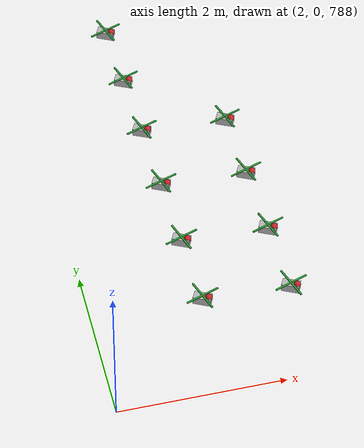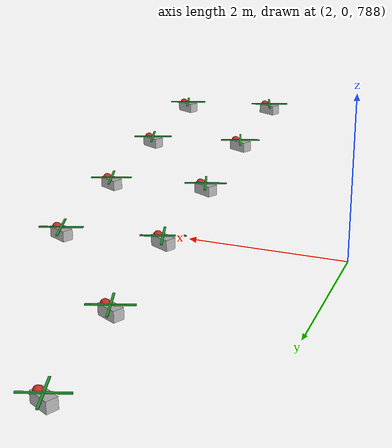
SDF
<sdf version="1.5">
 <world name="default">
  <model name="rotor_3">
   <pose>3 0 789.749 0 0 -0.452</pose>
   <link name="link">
    <sensor name="gps" type="gps">
     <gps>
      <position_sensing>
       <horizontal>
        <noise type="gaussian_quantized">
         <mean>0</mean>
         <stddev>4</stddev>
         <bias_mean>0</bias_mean>
         <bias_stddev>0</bias_stddev>
         <precision>0.001</precision>
        </noise>
       </horizontal>
       <vertical>
        <noise type="gaussian_quantized">
         <mean>0</mean>
         <stddev>8</stddev>
         <bias_mean>0</bias_mean>
         <bias_stddev>0</bias_stddev>
         <precision>0.01</precision>
        </noise>
       </vertical>
      </position_sensing>
      <velocity_sensing>
       <horizontal>
        <noise type="gaussian_quantized">
         <mean>0</mean>
         <stddev>4</stddev>
         <bias_mean>0</bias_mean>
         <bias_stddev>0</bias_stddev>
         <precision>0.001</precision>
        </noise>
       </horizontal>
       <vertical>
        <noise type="gaussian_quantized">
         <mean>0</mean>
         <stddev>8</stddev>
         <bias_mean>0</bias_mean>
         <bias_stddev>0</bias_stddev>
         <precision>0.01</precision>
        </noise>
       </vertical>
      </velocity_sensing>
     </gps>
     <always_on>1</always_on>
    </sensor>
    <sensor name="imu" type="imu">
     <imu>
      <angular_velocity>
       <x>
        <noise type="gaussian">
         <mean>0</mean>
         <stddev>0.0002</stddev>
         <bias_mean>7.5e-06</bias_mean>
         <bias_stddev>8e-07</bias_stddev>
        </noise>
       </x>
       <y>
        <noise type="gaussian">
         <mean>0</mean>
         <stddev>0.0002</stddev>
         <bias_mean>7.5e-06</bias_mean>
         <bias_stddev>8e-07</bias_stddev>
        </noise>
       </y>
       <z>
        <noise type="gaussian">
         <mean>0</mean>
         <stddev>0.0002</stddev>
         <bias_mean>7.5e-06</bias_mean>
         <bias_stddev>8e-07</bias_stddev>
        </noise>
       </z>
      </angular_velocity>
      <linear_acceleration>
       <x>
        <noise type="gaussian">
         <mean>0</mean>
         <stddev>0.0002</stddev>
         <bias_mean>7.5e-06</bias_mean>
         <bias_stddev>8e-07</bias_stddev>
        </noise>
       </x>
       <y>
        <noise type="gaussian">
         <mean>0</mean>
         <stddev>0.0002</stddev>
         <bias_mean>7.5e-06</bias_mean>
         <bias_stddev>8e-07</bias_stddev>
        </noise>
       </y>
       <z>
        <noise type="gaussian">
         <mean>0</mean>
         <stddev>0.0002</stddev>
         <bias_mean>7.5e-06</bias_mean>
         <bias_stddev>8e-07</bias_stddev>
        </noise>
       </z>
      </linear_acceleration>
     </imu>
     <always_on>1</always_on>
    </sensor>
    <sensor name="camera" type="logical_camera">
     <logical_camera>
      <near>0.1</near>
      <far>50</far>
      <horizontal_fov>1.4656</horizontal_fov>
      <aspect_ratio>1.778</aspect_ratio>
     </logical_camera>
     <visualize>0</visualize>
     <always_on>1</always_on>
    </sensor>
    <kinematic>1</kinematic>
    <gravity>0</gravity>
    <collision name="collision"><geometry><box><size>0.2 0.1 0.1</size></box></geometry></collision>
    <visual name="visual"><geometry><box><size>0.2 0.1 0.1</size></box></geometry></visual>
    <visual name="visual_front">
     <pose>0.07 0 0.04 0 -0 0</pose>
     <geometry><sphere><radius>0.04</radius></sphere></geometry>
     <material><script><name>Gazebo/Red</name><uri>__default__</uri></script></material>
    </visual>
    <visual name="visual_blade1">
     <pose>0 0 0.055 0 -0 0.78539</pose>
     <geometry><box><size>0.4 0.02 0.01</size></box></geometry>
     <material><script><name>Gazebo/Green</name><uri>__default__</uri></script></material>
    </visual>
    <visual name="visual_blade2">
     <pose>0 0 0.055 0 -0 2.3562</pose>
     <geometry><box><size>0.4 0.02 0.01</size></box></geometry>
     <material><script><name>Gazebo/Green</name><uri>__default__</uri></script></material>
    </visual>
    <inertial>
     <inertia><ixx>1</ixx><ixy>0</ixy><ixz>0</ixz><iyy>1</iyy><iyz>0</iyz><izz>1</izz></inertia>
     <mass>1</mass>
    </inertial>
   </link>
   <plugin name="swarm_controller_rotor_3" filename="libTeamControllerPlugin.so">
    <type>rotor</type>
    <camera>link::camera</camera>
    <gps>link::gps</gps>
    <imu>link::imu</imu>
    <address>192.168.1.4</address>
    <num_messages>1</num_messages>
    <swarm_search_area>
     <min_relative_latitude_deg>-0.01</min_relative_latitude_deg>
     <max_relative_latitude_deg>0.01</max_relative_latitude_deg>
     <min_relative_longitude_deg>-0.01</min_relative_longitude_deg>
     <max_relative_longitude_deg>0.01</max_relative_longitude_deg>
    </swarm_search_area>
    <battery>
     <capacity>3500</capacity>
     <consumption>1500</consumption>
     <consumption_factor>0.8</consumption_factor>
    </battery>
   </plugin>
  </model>
  <model name="rotor_4">
   <pose>4 0 789.686 0 0 -0.452</pose>
   <link name="link">
    <sensor name="gps" type="gps">
     <gps>
      <position_sensing>
       <horizontal>
        <noise type="gaussian_quantized">
         <mean>0</mean>
         <stddev>4</stddev>
         <bias_mean>0</bias_mean>
         <bias_stddev>0</bias_stddev>
         <precision>0.001</precision>
        </noise>
       </horizontal>
       <vertical>
        <noise type="gaussian_quantized">
         <mean>0</mean>
         <stddev>8</stddev>
         <bias_mean>0</bias_mean>
         <bias_stddev>0</bias_stddev>
         <precision>0.01</precision>
        </noise>
       </vertical>
      </position_sensing>
      <velocity_sensing>
       <horizontal>
        <noise type="gaussian_quantized">
         <mean>0</mean>
         <stddev>4</stddev>
         <bias_mean>0</bias_mean>
         <bias_stddev>0</bias_stddev>
         <precision>0.001</precision>
        </noise>
       </horizontal>
       <vertical>
        <noise type="gaussian_quantized">
         <mean>0</mean>
         <stddev>8</stddev>
         <bias_mean>0</bias_mean>
         <bias_stddev>0</bias_stddev>
         <precision>0.01</precision>
        </noise>
       </vertical>
      </velocity_sensing>
     </gps>
     <always_on>1</always_on>
    </sensor>
    <sensor name="imu" type="imu">
     <imu>
      <angular_velocity>
       <x>
        <noise type="gaussian">
         <mean>0</mean>
         <stddev>0.0002</stddev>
         <bias_mean>7.5e-06</bias_mean>
         <bias_stddev>8e-07</bias_stddev>
        </noise>
       </x>
       <y>
        <noise type="gaussian">
         <mean>0</mean>
         <stddev>0.0002</stddev>
         <bias_mean>7.5e-06</bias_mean>
         <bias_stddev>8e-07</bias_stddev>
        </noise>
       </y>
       <z>
        <noise type="gaussian">
         <mean>0</mean>
         <stddev>0.0002</stddev>
         <bias_mean>7.5e-06</bias_mean>
         <bias_stddev>8e-07</bias_stddev>
        </noise>
       </z>
      </angular_velocity>
      <linear_acceleration>
       <x>
        <noise type="gaussian">
         <mean>0</mean>
         <stddev>0.0002</stddev>
         <bias_mean>7.5e-06</bias_mean>
         <bias_stddev>8e-07</bias_stddev>
        </noise>
       </x>
       <y>
        <noise type="gaussian">
         <mean>0</mean>
         <stddev>0.0002</stddev>
         <bias_mean>7.5e-06</bias_mean>
         <bias_stddev>8e-07</bias_stddev>
        </noise>
       </y>
       <z>
        <noise type="gaussian">
         <mean>0</mean>
         <stddev>0.0002</stddev>
         <bias_mean>7.5e-06</bias_mean>
         <bias_stddev>8e-07</bias_stddev>
        </noise>
       </z>
      </linear_acceleration>
     </imu>
     <always_on>1</always_on>
    </sensor>
    <sensor name="camera" type="logical_camera">
     <logical_camera>
      <near>0.1</near>
      <far>50</far>
      <horizontal_fov>1.4656</horizontal_fov>
      <aspect_ratio>1.778</aspect_ratio>
     </logical_camera>
     <visualize>0</visualize>
     <always_on>1</always_on>
    </sensor>
    <kinematic>1</kinematic>
    <gravity>0</gravity>
    <collision name="collision"><geometry><box><size>0.2 0.1 0.1</size></box></geometry></collision>
    <visual name="visual"><geometry><box><size>0.2 0.1 0.1</size></box></geometry></visual>
    <visual name="visual_front">
     <pose>0.07 0 0.04 0 -0 0</pose>
     <geometry><sphere><radius>0.04</radius></sphere></geometry>
     <material><script><name>Gazebo/Red</name><uri>__default__</uri></script></material>
    </visual>
    <visual name="visual_blade1">
     <pose>0 0 0.055 0 -0 0.78539</pose>
     <geometry><box><size>0.4 0.02 0.01</size></box></geometry>
     <material><script><name>Gazebo/Green</name><uri>__default__</uri></script></material>
    </visual>
    <visual name="visual_blade2">
     <pose>0 0 0.055 0 -0 2.3562</pose>
     <geometry><box><size>0.4 0.02 0.01</size></box></geometry>
     <material><script><name>Gazebo/Green</name><uri>__default__</uri></script></material>
    </visual>
    <inertial>
     <inertia><ixx>1</ixx><ixy>0</ixy><ixz>0</ixz><iyy>1</iyy><iyz>0</iyz><izz>1</izz></inertia>
     <mass>1</mass>
    </inertial>
   </link>
   <plugin name="swarm_controller_rotor_4" filename="libTeamControllerPlugin.so">
    <type>rotor</type>
    <camera>link::camera</camera>
    <gps>link::gps</gps>
    <imu>link::imu</imu>
    <address>192.168.1.5</address>
    <num_messages>1</num_messages>
    <swarm_search_area>
     <min_relative_latitude_deg>-0.01</min_relative_latitude_deg>
     <max_relative_latitude_deg>0.01</max_relative_latitude_deg>
     <min_relative_longitude_deg>-0.01</min_relative_longitude_deg>
     <max_relative_longitude_deg>0.01</max_relative_longitude_deg>
    </swarm_search_area>
    <battery>
     <capacity>3500</capacity>
     <consumption>1500</consumption>
     <consumption_factor>0.8</consumption_factor>
    </battery>
   </plugin>
  </model>
  <model name="rotor_9">
   <pose>3 1 789.592 0 0 -0.452</pose>
   <link name="link">
    <sensor name="gps" type="gps">
     <gps>
      <position_sensing>
       <horizontal>
        <noise type="gaussian_quantized">
         <mean>0</mean>
         <stddev>4</stddev>
         <bias_mean>0</bias_mean>
         <bias_stddev>0</bias_stddev>
         <precision>0.001</precision>
        </noise>
       </horizontal>
       <vertical>
        <noise type="gaussian_quantized">
         <mean>0</mean>
         <stddev>8</stddev>
         <bias_mean>0</bias_mean>
         <bias_stddev>0</bias_stddev>
         <precision>0.01</precision>
        </noise>
       </vertical>
      </position_sensing>
      <velocity_sensing>
       <horizontal>
        <noise type="gaussian_quantized">
         <mean>0</mean>
         <stddev>4</stddev>
         <bias_mean>0</bias_mean>
         <bias_stddev>0</bias_stddev>
         <precision>0.001</precision>
        </noise>
       </horizontal>
       <vertical>
        <noise type="gaussian_quantized">
         <mean>0</mean>
         <stddev>8</stddev>
         <bias_mean>0</bias_mean>
         <bias_stddev>0</bias_stddev>
         <precision>0.01</precision>
        </noise>
       </vertical>
      </velocity_sensing>
     </gps>
     <always_on>1</always_on>
    </sensor>
    <sensor name="imu" type="imu">
     <imu>
      <angular_velocity>
       <x>
        <noise type="gaussian">
         <mean>0</mean>
         <stddev>0.0002</stddev>
         <bias_mean>7.5e-06</bias_mean>
         <bias_stddev>8e-07</bias_stddev>
        </noise>
       </x>
       <y>
        <noise type="gaussian">
         <mean>0</mean>
         <stddev>0.0002</stddev>
         <bias_mean>7.5e-06</bias_mean>
         <bias_stddev>8e-07</bias_stddev>
        </noise>
       </y>
       <z>
        <noise type="gaussian">
         <mean>0</mean>
         <stddev>0.0002</stddev>
         <bias_mean>7.5e-06</bias_mean>
         <bias_stddev>8e-07</bias_stddev>
        </noise>
       </z>
      </angular_velocity>
      <linear_acceleration>
       <x>
        <noise type="gaussian">
         <mean>0</mean>
         <stddev>0.0002</stddev>
         <bias_mean>7.5e-06</bias_mean>
         <bias_stddev>8e-07</bias_stddev>
        </noise>
       </x>
       <y>
        <noise type="gaussian">
         <mean>0</mean>
         <stddev>0.0002</stddev>
         <bias_mean>7.5e-06</bias_mean>
         <bias_stddev>8e-07</bias_stddev>
        </noise>
       </y>
       <z>
        <noise type="gaussian">
         <mean>0</mean>
         <stddev>0.0002</stddev>
         <bias_mean>7.5e-06</bias_mean>
         <bias_stddev>8e-07</bias_stddev>
        </noise>
       </z>
      </linear_acceleration>
     </imu>
     <always_on>1</always_on>
    </sensor>
    <sensor name="camera" type="logical_camera">
     <logical_camera>
      <near>0.1</near>
      <far>50</far>
      <horizontal_fov>1.4656</horizontal_fov>
      <aspect_ratio>1.778</aspect_ratio>
     </logical_camera>
     <visualize>0</visualize>
     <always_on>1</always_on>
    </sensor>
    <kinematic>1</kinematic>
    <gravity>0</gravity>
    <collision name="collision"><geometry><box><size>0.2 0.1 0.1</size></box></geometry></collision>
    <visual name="visual"><geometry><box><size>0.2 0.1 0.1</size></box></geometry></visual>
    <visual name="visual_front">
     <pose>0.07 0 0.04 0 -0 0</pose>
     <geometry><sphere><radius>0.04</radius></sphere></geometry>
     <material><script><name>Gazebo/Red</name><uri>__default__</uri></script></material>
    </visual>
    <visual name="visual_blade1">
     <pose>0 0 0.055 0 -0 0.78539</pose>
     <geometry><box><size>0.4 0.02 0.01</size></box></geometry>
     <material><script><name>Gazebo/Green</name><uri>__default__</uri></script></material>
    </visual>
    <visual name="visual_blade2">
     <pose>0 0 0.055 0 -0 2.3562</pose>
     <geometry><box><size>0.4 0.02 0.01</size></box></geometry>
     <material><script><name>Gazebo/Green</name><uri>__default__</uri></script></material>
    </visual>
    <inertial>
     <inertia><ixx>1</ixx><ixy>0</ixy><ixz>0</ixz><iyy>1</iyy><iyz>0</iyz><izz>1</izz></inertia>
     <mass>1</mass>
    </inertial>
   </link>
   <plugin name="swarm_controller_rotor_9" filename="libTeamControllerPlugin.so">
    <type>rotor</type>
    <camera>link::camera</camera>
    <gps>link::gps</gps>
    <imu>link::imu</imu>
    <address>192.168.1.10</address>
    <num_messages>1</num_messages>
    <swarm_search_area>
     <min_relative_latitude_deg>-0.01</min_relative_latitude_deg>
     <max_relative_latitude_deg>0.01</max_relative_latitude_deg>
     <min_relative_longitude_deg>-0.01</min_relative_longitude_deg>
     <max_relative_longitude_deg>0.01</max_relative_longitude_deg>
    </swarm_search_area>
    <battery>
     <capacity>3500</capacity>
     <consumption>1500</consumption>
     <consumption_factor>0.8</consumption_factor>
    </battery>
   </plugin>
  </model>
  <model name="rotor_10">
   <pose>4 1 789.53 0 0 -0.452</pose>
   <link name="link">
    <sensor name="gps" type="gps">
     <gps>
      <position_sensing>
       <horizontal>
        <noise type="gaussian_quantized">
         <mean>0</mean>
         <stddev>4</stddev>
         <bias_mean>0</bias_mean>
         <bias_stddev>0</bias_stddev>
         <precision>0.001</precision>
        </noise>
       </horizontal>
       <vertical>
        <noise type="gaussian_quantized">
         <mean>0</mean>
         <stddev>8</stddev>
         <bias_mean>0</bias_mean>
         <bias_stddev>0</bias_stddev>
         <precision>0.01</precision>
        </noise>
       </vertical>
      </position_sensing>
      <velocity_sensing>
       <horizontal>
        <noise type="gaussian_quantized">
         <mean>0</mean>
         <stddev>4</stddev>
         <bias_mean>0</bias_mean>
         <bias_stddev>0</bias_stddev>
         <precision>0.001</precision>
        </noise>
       </horizontal>
       <vertical>
        <noise type="gaussian_quantized">
         <mean>0</mean>
         <stddev>8</stddev>
         <bias_mean>0</bias_mean>
         <bias_stddev>0</bias_stddev>
         <precision>0.01</precision>
        </noise>
       </vertical>
      </velocity_sensing>
     </gps>
     <always_on>1</always_on>
    </sensor>
    <sensor name="imu" type="imu">
     <imu>
      <angular_velocity>
       <x>
        <noise type="gaussian">
         <mean>0</mean>
         <stddev>0.0002</stddev>
         <bias_mean>7.5e-06</bias_mean>
         <bias_stddev>8e-07</bias_stddev>
        </noise>
       </x>
       <y>
        <noise type="gaussian">
         <mean>0</mean>
         <stddev>0.0002</stddev>
         <bias_mean>7.5e-06</bias_mean>
         <bias_stddev>8e-07</bias_stddev>
        </noise>
       </y>
       <z>
        <noise type="gaussian">
         <mean>0</mean>
         <stddev>0.0002</stddev>
         <bias_mean>7.5e-06</bias_mean>
         <bias_stddev>8e-07</bias_stddev>
        </noise>
       </z>
      </angular_velocity>
      <linear_acceleration>
       <x>
        <noise type="gaussian">
         <mean>0</mean>
         <stddev>0.0002</stddev>
         <bias_mean>7.5e-06</bias_mean>
         <bias_stddev>8e-07</bias_stddev>
        </noise>
       </x>
       <y>
        <noise type="gaussian">
         <mean>0</mean>
         <stddev>0.0002</stddev>
         <bias_mean>7.5e-06</bias_mean>
         <bias_stddev>8e-07</bias_stddev>
        </noise>
       </y>
       <z>
        <noise type="gaussian">
         <mean>0</mean>
         <stddev>0.0002</stddev>
         <bias_mean>7.5e-06</bias_mean>
         <bias_stddev>8e-07</bias_stddev>
        </noise>
       </z>
      </linear_acceleration>
     </imu>
     <always_on>1</always_on>
    </sensor>
    <sensor name="camera" type="logical_camera">
     <logical_camera>
      <near>0.1</near>
      <far>50</far>
      <horizontal_fov>1.4656</horizontal_fov>
      <aspect_ratio>1.778</aspect_ratio>
     </logical_camera>
     <visualize>0</visualize>
     <always_on>1</always_on>
    </sensor>
    <kinematic>1</kinematic>
    <gravity>0</gravity>
    <collision name="collision"><geometry><box><size>0.2 0.1 0.1</size></box></geometry></collision>
    <visual name="visual"><geometry><box><size>0.2 0.1 0.1</size></box></geometry></visual>
    <visual name="visual_front">
     <pose>0.07 0 0.04 0 -0 0</pose>
     <geometry><sphere><radius>0.04</radius></sphere></geometry>
     <material><script><name>Gazebo/Red</name><uri>__default__</uri></script></material>
    </visual>
    <visual name="visual_blade1">
     <pose>0 0 0.055 0 -0 0.78539</pose>
     <geometry><box><size>0.4 0.02 0.01</size></box></geometry>
     <material><script><name>Gazebo/Green</name><uri>__default__</uri></script></material>
    </visual>
    <visual name="visual_blade2">
     <pose>0 0 0.055 0 -0 2.3562</pose>
     <geometry><box><size>0.4 0.02 0.01</size></box></geometry>
     <material><script><name>Gazebo/Green</name><uri>__default__</uri></script></material>
    </visual>
    <inertial>
     <inertia><ixx>1</ixx><ixy>0</ixy><ixz>0</ixz><iyy>1</iyy><iyz>0</iyz><izz>1</izz></inertia>
     <mass>1</mass>
    </inertial>
   </link>
   <plugin name="swarm_controller_rotor_10" filename="libTeamControllerPlugin.so">
    <type>rotor</type>
    <camera>link::camera</camera>
    <gps>link::gps</gps>
    <imu>link::imu</imu>
    <address>192.168.1.11</address>
    <num_messages>1</num_messages>
    <swarm_search_area>
     <min_relative_latitude_deg>-0.01</min_relative_latitude_deg>
     <max_relative_latitude_deg>0.01</max_relative_latitude_deg>
     <min_relative_longitude_deg>-0.01</min_relative_longitude_deg>
     <max_relative_longitude_deg>0.01</max_relative_longitude_deg>
    </swarm_search_area>
    <battery>
     <capacity>3500</capacity>
     <consumption>1500</consumption>
     <consumption_factor>0.8</consumption_factor>
    </battery>
   </plugin>
  </model>
  <model name="rotor_15">
   <pose>3 2 789.436 0 0 -0.452</pose>
   <link name="link">
    <sensor name="gps" type="gps">
     <gps>
      <position_sensing>
       <horizontal>
        <noise type="gaussian_quantized">
         <mean>0</mean>
         <stddev>4</stddev>
         <bias_mean>0</bias_mean>
         <bias_stddev>0</bias_stddev>
         <precision>0.001</precision>
        </noise>
       </horizontal>
       <vertical>
        <noise type="gaussian_quantized">
         <mean>0</mean>
         <stddev>8</stddev>
         <bias_mean>0</bias_mean>
         <bias_stddev>0</bias_stddev>
         <precision>0.01</precision>
        </noise>
       </vertical>
      </position_sensing>
      <velocity_sensing>
       <horizontal>
        <noise type="gaussian_quantized">
         <mean>0</mean>
         <stddev>4</stddev>
         <bias_mean>0</bias_mean>
         <bias_stddev>0</bias_stddev>
         <precision>0.001</precision>
        </noise>
       </horizontal>
       <vertical>
        <noise type="gaussian_quantized">
         <mean>0</mean>
         <stddev>8</stddev>
         <bias_mean>0</bias_mean>
         <bias_stddev>0</bias_stddev>
         <precision>0.01</precision>
        </noise>
       </vertical>
      </velocity_sensing>
     </gps>
     <always_on>1</always_on>
    </sensor>
    <sensor name="imu" type="imu">
     <imu>
      <angular_velocity>
       <x>
        <noise type="gaussian">
         <mean>0</mean>
         <stddev>0.0002</stddev>
         <bias_mean>7.5e-06</bias_mean>
         <bias_stddev>8e-07</bias_stddev>
        </noise>
       </x>
       <y>
        <noise type="gaussian">
         <mean>0</mean>
         <stddev>0.0002</stddev>
         <bias_mean>7.5e-06</bias_mean>
         <bias_stddev>8e-07</bias_stddev>
        </noise>
       </y>
       <z>
        <noise type="gaussian">
         <mean>0</mean>
         <stddev>0.0002</stddev>
         <bias_mean>7.5e-06</bias_mean>
         <bias_stddev>8e-07</bias_stddev>
        </noise>
       </z>
      </angular_velocity>
      <linear_acceleration>
       <x>
        <noise type="gaussian">
         <mean>0</mean>
         <stddev>0.0002</stddev>
         <bias_mean>7.5e-06</bias_mean>
         <bias_stddev>8e-07</bias_stddev>
        </noise>
       </x>
       <y>
        <noise type="gaussian">
         <mean>0</mean>
         <stddev>0.0002</stddev>
         <bias_mean>7.5e-06</bias_mean>
         <bias_stddev>8e-07</bias_stddev>
        </noise>
       </y>
       <z>
        <noise type="gaussian">
         <mean>0</mean>
         <stddev>0.0002</stddev>
         <bias_mean>7.5e-06</bias_mean>
         <bias_stddev>8e-07</bias_stddev>
        </noise>
       </z>
      </linear_acceleration>
     </imu>
     <always_on>1</always_on>
    </sensor>
    <sensor name="camera" type="logical_camera">
     <logical_camera>
      <near>0.1</near>
      <far>50</far>
      <horizontal_fov>1.4656</horizontal_fov>
      <aspect_ratio>1.778</aspect_ratio>
     </logical_camera>
     <visualize>0</visualize>
     <always_on>1</always_on>
    </sensor>
    <kinematic>1</kinematic>
    <gravity>0</gravity>
    <collision name="collision"><geometry><box><size>0.2 0.1 0.1</size></box></geometry></collision>
    <visual name="visual"><geometry><box><size>0.2 0.1 0.1</size></box></geometry></visual>
    <visual name="visual_front">
     <pose>0.07 0 0.04 0 -0 0</pose>
     <geometry><sphere><radius>0.04</radius></sphere></geometry>
     <material><script><name>Gazebo/Red</name><uri>__default__</uri></script></material>
    </visual>
    <visual name="visual_blade1">
     <pose>0 0 0.055 0 -0 0.78539</pose>
     <geometry><box><size>0.4 0.02 0.01</size></box></geometry>
     <material><script><name>Gazebo/Green</name><uri>__default__</uri></script></material>
    </visual>
    <visual name="visual_blade2">
     <pose>0 0 0.055 0 -0 2.3562</pose>
     <geometry><box><size>0.4 0.02 0.01</size></box></geometry>
     <material><script><name>Gazebo/Green</name><uri>__default__</uri></script></material>
    </visual>
    <inertial>
     <inertia><ixx>1</ixx><ixy>0</ixy><ixz>0</ixz><iyy>1</iyy><iyz>0</iyz><izz>1</izz></inertia>
     <mass>1</mass>
    </inertial>
   </link>
   <plugin name="swarm_controller_rotor_15" filename="libTeamControllerPlugin.so">
    <type>rotor</type>
    <camera>link::camera</camera>
    <gps>link::gps</gps>
    <imu>link::imu</imu>
    <address>192.168.1.16</address>
    <num_messages>1</num_messages>
    <swarm_search_area>
     <min_relative_latitude_deg>-0.01</min_relative_latitude_deg>
     <max_relative_latitude_deg>0.01</max_relative_latitude_deg>
     <min_relative_longitude_deg>-0.01</min_relative_longitude_deg>
     <max_relative_longitude_deg>0.01</max_relative_longitude_deg>
    </swarm_search_area>
    <battery>
     <capacity>3500</capacity>
     <consumption>1500</consumption>
     <consumption_factor>0.8</consumption_factor>
    </battery>
   </plugin>
  </model>
  <model name="rotor_16">
   <pose>4 2 789.374 0 0 -0.452</pose>
   <link name="link">
    <sensor name="gps" type="gps">
     <gps>
      <position_sensing>
       <horizontal>
        <noise type="gaussian_quantized">
         <mean>0</mean>
         <stddev>4</stddev>
         <bias_mean>0</bias_mean>
         <bias_stddev>0</bias_stddev>
         <precision>0.001</precision>
        </noise>
       </horizontal>
       <vertical>
        <noise type="gaussian_quantized">
         <mean>0</mean>
         <stddev>8</stddev>
         <bias_mean>0</bias_mean>
         <bias_stddev>0</bias_stddev>
         <precision>0.01</precision>
        </noise>
       </vertical>
      </position_sensing>
      <velocity_sensing>
       <horizontal>
        <noise type="gaussian_quantized">
         <mean>0</mean>
         <stddev>4</stddev>
         <bias_mean>0</bias_mean>
         <bias_stddev>0</bias_stddev>
         <precision>0.001</precision>
        </noise>
       </horizontal>
       <vertical>
        <noise type="gaussian_quantized">
         <mean>0</mean>
         <stddev>8</stddev>
         <bias_mean>0</bias_mean>
         <bias_stddev>0</bias_stddev>
         <precision>0.01</precision>
        </noise>
       </vertical>
      </velocity_sensing>
     </gps>
     <always_on>1</always_on>
    </sensor>
    <sensor name="imu" type="imu">
     <imu>
      <angular_velocity>
       <x>
        <noise type="gaussian">
         <mean>0</mean>
         <stddev>0.0002</stddev>
         <bias_mean>7.5e-06</bias_mean>
         <bias_stddev>8e-07</bias_stddev>
        </noise>
       </x>
       <y>
        <noise type="gaussian">
         <mean>0</mean>
         <stddev>0.0002</stddev>
         <bias_mean>7.5e-06</bias_mean>
         <bias_stddev>8e-07</bias_stddev>
        </noise>
       </y>
       <z>
        <noise type="gaussian">
         <mean>0</mean>
         <stddev>0.0002</stddev>
         <bias_mean>7.5e-06</bias_mean>
         <bias_stddev>8e-07</bias_stddev>
        </noise>
       </z>
      </angular_velocity>
      <linear_acceleration>
       <x>
        <noise type="gaussian">
         <mean>0</mean>
         <stddev>0.0002</stddev>
         <bias_mean>7.5e-06</bias_mean>
         <bias_stddev>8e-07</bias_stddev>
        </noise>
       </x>
       <y>
        <noise type="gaussian">
         <mean>0</mean>
         <stddev>0.0002</stddev>
         <bias_mean>7.5e-06</bias_mean>
         <bias_stddev>8e-07</bias_stddev>
        </noise>
       </y>
       <z>
        <noise type="gaussian">
         <mean>0</mean>
         <stddev>0.0002</stddev>
         <bias_mean>7.5e-06</bias_mean>
         <bias_stddev>8e-07</bias_stddev>
        </noise>
       </z>
      </linear_acceleration>
     </imu>
     <always_on>1</always_on>
    </sensor>
    <sensor name="camera" type="logical_camera">
     <logical_camera>
      <near>0.1</near>
      <far>50</far>
      <horizontal_fov>1.4656</horizontal_fov>
      <aspect_ratio>1.778</aspect_ratio>
     </logical_camera>
     <visualize>0</visualize>
     <always_on>1</always_on>
    </sensor>
    <kinematic>1</kinematic>
    <gravity>0</gravity>
    <collision name="collision"><geometry><box><size>0.2 0.1 0.1</size></box></geometry></collision>
    <visual name="visual"><geometry><box><size>0.2 0.1 0.1</size></box></geometry></visual>
    <visual name="visual_front">
     <pose>0.07 0 0.04 0 -0 0</pose>
     <geometry><sphere><radius>0.04</radius></sphere></geometry>
     <material><script><name>Gazebo/Red</name><uri>__default__</uri></script></material>
    </visual>
    <visual name="visual_blade1">
     <pose>0 0 0.055 0 -0 0.78539</pose>
     <geometry><box><size>0.4 0.02 0.01</size></box></geometry>
     <material><script><name>Gazebo/Green</name><uri>__default__</uri></script></material>
    </visual>
    <visual name="visual_blade2">
     <pose>0 0 0.055 0 -0 2.3562</pose>
     <geometry><box><size>0.4 0.02 0.01</size></box></geometry>
     <material><script><name>Gazebo/Green</name><uri>__default__</uri></script></material>
    </visual>
    <inertial>
     <inertia><ixx>1</ixx><ixy>0</ixy><ixz>0</ixz><iyy>1</iyy><iyz>0</iyz><izz>1</izz></inertia>
     <mass>1</mass>
    </inertial>
   </link>
   <plugin name="swarm_controller_rotor_16" filename="libTeamControllerPlugin.so">
    <type>rotor</type>
    <camera>link::camera</camera>
    <gps>link::gps</gps>
    <imu>link::imu</imu>
    <address>192.168.1.17</address>
    <num_messages>1</num_messages>
    <swarm_search_area>
     <min_relative_latitude_deg>-0.01</min_relative_latitude_deg>
     <max_relative_latitude_deg>0.01</max_relative_latitude_deg>
     <min_relative_longitude_deg>-0.01</min_relative_longitude_deg>
     <max_relative_longitude_deg>0.01</max_relative_longitude_deg>
    </swarm_search_area>
    <battery>
     <capacity>3500</capacity>
     <consumption>1500</consumption>
     <consumption_factor>0.8</consumption_factor>
    </battery>
   </plugin>
  </model>
  <model name="rotor_21">
   <pose>3 3 789.28 0 0 -0.452</pose>
   <link name="link">
    <sensor name="gps" type="gps">
     <gps>
      <position_sensing>
       <horizontal>
        <noise type="gaussian_quantized">
         <mean>0</mean>
         <stddev>4</stddev>
         <bias_mean>0</bias_mean>
         <bias_stddev>0</bias_stddev>
         <precision>0.001</precision>
        </noise>
       </horizontal>
       <vertical>
        <noise type="gaussian_quantized">
         <mean>0</mean>
         <stddev>8</stddev>
         <bias_mean>0</bias_mean>
         <bias_stddev>0</bias_stddev>
         <precision>0.01</precision>
        </noise>
       </vertical>
      </position_sensing>
      <velocity_sensing>
       <horizontal>
        <noise type="gaussian_quantized">
         <mean>0</mean>
         <stddev>4</stddev>
         <bias_mean>0</bias_mean>
         <bias_stddev>0</bias_stddev>
         <precision>0.001</precision>
        </noise>
       </horizontal>
       <vertical>
        <noise type="gaussian_quantized">
         <mean>0</mean>
         <stddev>8</stddev>
         <bias_mean>0</bias_mean>
         <bias_stddev>0</bias_stddev>
         <precision>0.01</precision>
        </noise>
       </vertical>
      </velocity_sensing>
     </gps>
     <always_on>1</always_on>
    </sensor>
    <sensor name="imu" type="imu">
     <imu>
      <angular_velocity>
       <x>
        <noise type="gaussian">
         <mean>0</mean>
         <stddev>0.0002</stddev>
         <bias_mean>7.5e-06</bias_mean>
         <bias_stddev>8e-07</bias_stddev>
        </noise>
       </x>
       <y>
        <noise type="gaussian">
         <mean>0</mean>
         <stddev>0.0002</stddev>
         <bias_mean>7.5e-06</bias_mean>
         <bias_stddev>8e-07</bias_stddev>
        </noise>
       </y>
       <z>
        <noise type="gaussian">
         <mean>0</mean>
         <stddev>0.0002</stddev>
         <bias_mean>7.5e-06</bias_mean>
         <bias_stddev>8e-07</bias_stddev>
        </noise>
       </z>
      </angular_velocity>
      <linear_acceleration>
       <x>
        <noise type="gaussian">
         <mean>0</mean>
         <stddev>0.0002</stddev>
         <bias_mean>7.5e-06</bias_mean>
         <bias_stddev>8e-07</bias_stddev>
        </noise>
       </x>
       <y>
        <noise type="gaussian">
         <mean>0</mean>
         <stddev>0.0002</stddev>
         <bias_mean>7.5e-06</bias_mean>
         <bias_stddev>8e-07</bias_stddev>
        </noise>
       </y>
       <z>
        <noise type="gaussian">
         <mean>0</mean>
         <stddev>0.0002</stddev>
         <bias_mean>7.5e-06</bias_mean>
         <bias_stddev>8e-07</bias_stddev>
        </noise>
       </z>
      </linear_acceleration>
     </imu>
     <always_on>1</always_on>
    </sensor>
    <sensor name="camera" type="logical_camera">
     <logical_camera>
      <near>0.1</near>
      <far>50</far>
      <horizontal_fov>1.4656</horizontal_fov>
      <aspect_ratio>1.778</aspect_ratio>
     </logical_camera>
     <visualize>0</visualize>
     <always_on>1</always_on>
    </sensor>
    <kinematic>1</kinematic>
    <gravity>0</gravity>
    <collision name="collision"><geometry><box><size>0.2 0.1 0.1</size></box></geometry></collision>
    <visual name="visual"><geometry><box><size>0.2 0.1 0.1</size></box></geometry></visual>
    <visual name="visual_front">
     <pose>0.07 0 0.04 0 -0 0</pose>
     <geometry><sphere><radius>0.04</radius></sphere></geometry>
     <material><script><name>Gazebo/Red</name><uri>__default__</uri></script></material>
    </visual>
    <visual name="visual_blade1">
     <pose>0 0 0.055 0 -0 0.78539</pose>
     <geometry><box><size>0.4 0.02 0.01</size></box></geometry>
     <material><script><name>Gazebo/Green</name><uri>__default__</uri></script></material>
    </visual>
    <visual name="visual_blade2">
     <pose>0 0 0.055 0 -0 2.3562</pose>
     <geometry><box><size>0.4 0.02 0.01</size></box></geometry>
     <material><script><name>Gazebo/Green</name><uri>__default__</uri></script></material>
    </visual>
    <inertial>
     <inertia><ixx>1</ixx><ixy>0</ixy><ixz>0</ixz><iyy>1</iyy><iyz>0</iyz><izz>1</izz></inertia>
     <mass>1</mass>
    </inertial>
   </link>
   <plugin name="swarm_controller_rotor_21" filename="libTeamControllerPlugin.so">
    <type>rotor</type>
    <camera>link::camera</camera>
    <gps>link::gps</gps>
    <imu>link::imu</imu>
    <address>192.168.1.22</address>
    <num_messages>1</num_messages>
    <swarm_search_area>
     <min_relative_latitude_deg>-0.01</min_relative_latitude_deg>
     <max_relative_latitude_deg>0.01</max_relative_latitude_deg>
     <min_relative_longitude_deg>-0.01</min_relative_longitude_deg>
     <max_relative_longitude_deg>0.01</max_relative_longitude_deg>
    </swarm_search_area>
    <battery>
     <capacity>3500</capacity>
     <consumption>1500</consumption>
     <consumption_factor>0.8</consumption_factor>
    </battery>
   </plugin>
  </model>
  <model name="rotor_22">
   <pose>4 3 789.218 0 0 -0.452</pose>
   <link name="link">
    <sensor name="gps" type="gps">
     <gps>
      <position_sensing>
       <horizontal>
        <noise type="gaussian_quantized">
         <mean>0</mean>
         <stddev>4</stddev>
         <bias_mean>0</bias_mean>
         <bias_stddev>0</bias_stddev>
         <precision>0.001</precision>
        </noise>
       </horizontal>
       <vertical>
        <noise type="gaussian_quantized">
         <mean>0</mean>
         <stddev>8</stddev>
         <bias_mean>0</bias_mean>
         <bias_stddev>0</bias_stddev>
         <precision>0.01</precision>
        </noise>
       </vertical>
      </position_sensing>
      <velocity_sensing>
       <horizontal>
        <noise type="gaussian_quantized">
         <mean>0</mean>
         <stddev>4</stddev>
         <bias_mean>0</bias_mean>
         <bias_stddev>0</bias_stddev>
         <precision>0.001</precision>
        </noise>
       </horizontal>
       <vertical>
        <noise type="gaussian_quantized">
         <mean>0</mean>
         <stddev>8</stddev>
         <bias_mean>0</bias_mean>
         <bias_stddev>0</bias_stddev>
         <precision>0.01</precision>
        </noise>
       </vertical>
      </velocity_sensing>
     </gps>
     <always_on>1</always_on>
    </sensor>
    <sensor name="imu" type="imu">
     <imu>
      <angular_velocity>
       <x>
        <noise type="gaussian">
         <mean>0</mean>
         <stddev>0.0002</stddev>
         <bias_mean>7.5e-06</bias_mean>
         <bias_stddev>8e-07</bias_stddev>
        </noise>
       </x>
       <y>
        <noise type="gaussian">
         <mean>0</mean>
         <stddev>0.0002</stddev>
         <bias_mean>7.5e-06</bias_mean>
         <bias_stddev>8e-07</bias_stddev>
        </noise>
       </y>
       <z>
        <noise type="gaussian">
         <mean>0</mean>
         <stddev>0.0002</stddev>
         <bias_mean>7.5e-06</bias_mean>
         <bias_stddev>8e-07</bias_stddev>
        </noise>
       </z>
      </angular_velocity>
      <linear_acceleration>
       <x>
        <noise type="gaussian">
         <mean>0</mean>
         <stddev>0.0002</stddev>
         <bias_mean>7.5e-06</bias_mean>
         <bias_stddev>8e-07</bias_stddev>
        </noise>
       </x>
       <y>
        <noise type="gaussian">
         <mean>0</mean>
         <stddev>0.0002</stddev>
         <bias_mean>7.5e-06</bias_mean>
         <bias_stddev>8e-07</bias_stddev>
        </noise>
       </y>
       <z>
        <noise type="gaussian">
         <mean>0</mean>
         <stddev>0.0002</stddev>
         <bias_mean>7.5e-06</bias_mean>
         <bias_stddev>8e-07</bias_stddev>
        </noise>
       </z>
      </linear_acceleration>
     </imu>
     <always_on>1</always_on>
    </sensor>
    <sensor name="camera" type="logical_camera">
     <logical_camera>
      <near>0.1</near>
      <far>50</far>
      <horizontal_fov>1.4656</horizontal_fov>
      <aspect_ratio>1.778</aspect_ratio>
     </logical_camera>
     <visualize>0</visualize>
     <always_on>1</always_on>
    </sensor>
    <kinematic>1</kinematic>
    <gravity>0</gravity>
    <collision name="collision"><geometry><box><size>0.2 0.1 0.1</size></box></geometry></collision>
    <visual name="visual"><geometry><box><size>0.2 0.1 0.1</size></box></geometry></visual>
    <visual name="visual_front">
     <pose>0.07 0 0.04 0 -0 0</pose>
     <geometry><sphere><radius>0.04</radius></sphere></geometry>
     <material><script><name>Gazebo/Red</name><uri>__default__</uri></script></material>
    </visual>
    <visual name="visual_blade1">
     <pose>0 0 0.055 0 -0 0.78539</pose>
     <geometry><box><size>0.4 0.02 0.01</size></box></geometry>
     <material><script><name>Gazebo/Green</name><uri>__default__</uri></script></material>
    </visual>
    <visual name="visual_blade2">
     <pose>0 0 0.055 0 -0 2.3562</pose>
     <geometry><box><size>0.4 0.02 0.01</size></box></geometry>
     <material><script><name>Gazebo/Green</name><uri>__default__</uri></script></material>
    </visual>
    <inertial>
     <inertia><ixx>1</ixx><ixy>0</ixy><ixz>0</ixz><iyy>1</iyy><iyz>0</iyz><izz>1</izz></inertia>
     <mass>1</mass>
    </inertial>
   </link>
   <plugin name="swarm_controller_rotor_22" filename="libTeamControllerPlugin.so">
    <type>rotor</type>
    <camera>link::camera</camera>
    <gps>link::gps</gps>
    <imu>link::imu</imu>
    <address>192.168.1.23</address>
    <num_messages>1</num_messages>
    <swarm_search_area>
     <min_relative_latitude_deg>-0.01</min_relative_latitude_deg>
     <max_relative_latitude_deg>0.01</max_relative_latitude_deg>
     <min_relative_longitude_deg>-0.01</min_relative_longitude_deg>
     <max_relative_longitude_deg>0.01</max_relative_longitude_deg>
    </swarm_search_area>
    <battery>
     <capacity>3500</capacity>
     <consumption>1500</consumption>
     <consumption_factor>0.8</consumption_factor>
    </battery>
   </plugin>
  </model>
  <model name="rotor_27">
   <pose>3 4 789.093 0 0 -0.452</pose>
   <link name="link">
    <sensor name="gps" type="gps">
     <gps>
      <position_sensing>
       <horizontal>
        <noise type="gaussian_quantized">
         <mean>0</mean>
         <stddev>4</stddev>
         <bias_mean>0</bias_mean>
         <bias_stddev>0</bias_stddev>
         <precision>0.001</precision>
        </noise>
       </horizontal>
       <vertical>
        <noise type="gaussian_quantized">
         <mean>0</mean>
         <stddev>8</stddev>
         <bias_mean>0</bias_mean>
         <bias_stddev>0</bias_stddev>
         <precision>0.01</precision>
        </noise>
       </vertical>
      </position_sensing>
      <velocity_sensing>
       <horizontal>
        <noise type="gaussian_quantized">
         <mean>0</mean>
         <stddev>4</stddev>
         <bias_mean>0</bias_mean>
         <bias_stddev>0</bias_stddev>
         <precision>0.001</precision>
        </noise>
       </horizontal>
       <vertical>
        <noise type="gaussian_quantized">
         <mean>0</mean>
         <stddev>8</stddev>
         <bias_mean>0</bias_mean>
         <bias_stddev>0</bias_stddev>
         <precision>0.01</precision>
        </noise>
       </vertical>
      </velocity_sensing>
     </gps>
     <always_on>1</always_on>
    </sensor>
    <sensor name="imu" type="imu">
     <imu>
      <angular_velocity>
       <x>
        <noise type="gaussian">
         <mean>0</mean>
         <stddev>0.0002</stddev>
         <bias_mean>7.5e-06</bias_mean>
         <bias_stddev>8e-07</bias_stddev>
        </noise>
       </x>
       <y>
        <noise type="gaussian">
         <mean>0</mean>
         <stddev>0.0002</stddev>
         <bias_mean>7.5e-06</bias_mean>
         <bias_stddev>8e-07</bias_stddev>
        </noise>
       </y>
       <z>
        <noise type="gaussian">
         <mean>0</mean>
         <stddev>0.0002</stddev>
         <bias_mean>7.5e-06</bias_mean>
         <bias_stddev>8e-07</bias_stddev>
        </noise>
       </z>
      </angular_velocity>
      <linear_acceleration>
       <x>
        <noise type="gaussian">
         <mean>0</mean>
         <stddev>0.0002</stddev>
         <bias_mean>7.5e-06</bias_mean>
         <bias_stddev>8e-07</bias_stddev>
        </noise>
       </x>
       <y>
        <noise type="gaussian">
         <mean>0</mean>
         <stddev>0.0002</stddev>
         <bias_mean>7.5e-06</bias_mean>
         <bias_stddev>8e-07</bias_stddev>
        </noise>
       </y>
       <z>
        <noise type="gaussian">
         <mean>0</mean>
         <stddev>0.0002</stddev>
         <bias_mean>7.5e-06</bias_mean>
         <bias_stddev>8e-07</bias_stddev>
        </noise>
       </z>
      </linear_acceleration>
     </imu>
     <always_on>1</always_on>
    </sensor>
    <sensor name="camera" type="logical_camera">
     <logical_camera>
      <near>0.1</near>
      <far>50</far>
      <horizontal_fov>1.4656</horizontal_fov>
      <aspect_ratio>1.778</aspect_ratio>
     </logical_camera>
     <visualize>0</visualize>
     <always_on>1</always_on>
    </sensor>
    <kinematic>1</kinematic>
    <gravity>0</gravity>
    <collision name="collision"><geometry><box><size>0.2 0.1 0.1</size></box></geometry></collision>
    <visual name="visual"><geometry><box><size>0.2 0.1 0.1</size></box></geometry></visual>
    <visual name="visual_front">
     <pose>0.07 0 0.04 0 -0 0</pose>
     <geometry><sphere><radius>0.04</radius></sphere></geometry>
     <material><script><name>Gazebo/Red</name><uri>__default__</uri></script></material>
    </visual>
    <visual name="visual_blade1">
     <pose>0 0 0.055 0 -0 0.78539</pose>
     <geometry><box><size>0.4 0.02 0.01</size></box></geometry>
     <material><script><name>Gazebo/Green</name><uri>__default__</uri></script></material>
    </visual>
    <visual name="visual_blade2">
     <pose>0 0 0.055 0 -0 2.3562</pose>
     <geometry><box><size>0.4 0.02 0.01</size></box></geometry>
     <material><script><name>Gazebo/Green</name><uri>__default__</uri></script></material>
    </visual>
    <inertial>
     <inertia><ixx>1</ixx><ixy>0</ixy><ixz>0</ixz><iyy>1</iyy><iyz>0</iyz><izz>1</izz></inertia>
     <mass>1</mass>
    </inertial>
   </link>
   <plugin name="swarm_controller_rotor_27" filename="libTeamControllerPlugin.so">
    <type>rotor</type>
    <camera>link::camera</camera>
    <gps>link::gps</gps>
    <imu>link::imu</imu>
    <address>192.168.1.28</address>
    <num_messages>1</num_messages>
    <swarm_search_area>
     <min_relative_latitude_deg>-0.01</min_relative_latitude_deg>
     <max_relative_latitude_deg>0.01</max_relative_latitude_deg>
     <min_relative_longitude_deg>-0.01</min_relative_longitude_deg>
     <max_relative_longitude_deg>0.01</max_relative_longitude_deg>
    </swarm_search_area>
    <battery>
     <capacity>3500</capacity>
     <consumption>1500</consumption>
     <consumption_factor>0.8</consumption_factor>
    </battery>
   </plugin>
  </model>
  <model name="rotor_33">
   <pose>3 5 788.906 0 0 -0.452</pose>
   <link name="link">
    <sensor name="gps" type="gps">
     <gps>
      <position_sensing>
       <horizontal>
        <noise type="gaussian_quantized">
         <mean>0</mean>
         <stddev>4</stddev>
         <bias_mean>0</bias_mean>
         <bias_stddev>0</bias_stddev>
         <precision>0.001</precision>
        </noise>
       </horizontal>
       <vertical>
        <noise type="gaussian_quantized">
         <mean>0</mean>
         <stddev>8</stddev>
         <bias_mean>0</bias_mean>
         <bias_stddev>0</bias_stddev>
         <precision>0.01</precision>
        </noise>
       </vertical>
      </position_sensing>
      <velocity_sensing>
       <horizontal>
        <noise type="gaussian_quantized">
         <mean>0</mean>
         <stddev>4</stddev>
         <bias_mean>0</bias_mean>
         <bias_stddev>0</bias_stddev>
         <precision>0.001</precision>
        </noise>
       </horizontal>
       <vertical>
        <noise type="gaussian_quantized">
         <mean>0</mean>
         <stddev>8</stddev>
         <bias_mean>0</bias_mean>
         <bias_stddev>0</bias_stddev>
         <precision>0.01</precision>
        </noise>
       </vertical>
      </velocity_sensing>
     </gps>
     <always_on>1</always_on>
    </sensor>
    <sensor name="imu" type="imu">
     <imu>
      <angular_velocity>
       <x>
        <noise type="gaussian">
         <mean>0</mean>
         <stddev>0.0002</stddev>
         <bias_mean>7.5e-06</bias_mean>
         <bias_stddev>8e-07</bias_stddev>
        </noise>
       </x>
       <y>
        <noise type="gaussian">
         <mean>0</mean>
         <stddev>0.0002</stddev>
         <bias_mean>7.5e-06</bias_mean>
         <bias_stddev>8e-07</bias_stddev>
        </noise>
       </y>
       <z>
        <noise type="gaussian">
         <mean>0</mean>
         <stddev>0.0002</stddev>
         <bias_mean>7.5e-06</bias_mean>
         <bias_stddev>8e-07</bias_stddev>
        </noise>
       </z>
      </angular_velocity>
      <linear_acceleration>
       <x>
        <noise type="gaussian">
         <mean>0</mean>
         <stddev>0.0002</stddev>
         <bias_mean>7.5e-06</bias_mean>
         <bias_stddev>8e-07</bias_stddev>
        </noise>
       </x>
       <y>
        <noise type="gaussian">
         <mean>0</mean>
         <stddev>0.0002</stddev>
         <bias_mean>7.5e-06</bias_mean>
         <bias_stddev>8e-07</bias_stddev>
        </noise>
       </y>
       <z>
        <noise type="gaussian">
         <mean>0</mean>
         <stddev>0.0002</stddev>
         <bias_mean>7.5e-06</bias_mean>
         <bias_stddev>8e-07</bias_stddev>
        </noise>
       </z>
      </linear_acceleration>
     </imu>
     <always_on>1</always_on>
    </sensor>
    <sensor name="camera" type="logical_camera">
     <logical_camera>
      <near>0.1</near>
      <far>50</far>
      <horizontal_fov>1.4656</horizontal_fov>
      <aspect_ratio>1.778</aspect_ratio>
     </logical_camera>
     <visualize>0</visualize>
     <always_on>1</always_on>
    </sensor>
    <kinematic>1</kinematic>
    <gravity>0</gravity>
    <collision name="collision"><geometry><box><size>0.2 0.1 0.1</size></box></geometry></collision>
    <visual name="visual"><geometry><box><size>0.2 0.1 0.1</size></box></geometry></visual>
    <visual name="visual_front">
     <pose>0.07 0 0.04 0 -0 0</pose>
     <geometry><sphere><radius>0.04</radius></sphere></geometry>
     <material><script><name>Gazebo/Red</name><uri>__default__</uri></script></material>
    </visual>
    <visual name="visual_blade1">
     <pose>0 0 0.055 0 -0 0.78539</pose>
     <geometry><box><size>0.4 0.02 0.01</size></box></geometry>
     <material><script><name>Gazebo/Green</name><uri>__default__</uri></script></material>
    </visual>
    <visual name="visual_blade2">
     <pose>0 0 0.055 0 -0 2.3562</pose>
     <geometry><box><size>0.4 0.02 0.01</size></box></geometry>
     <material><script><name>Gazebo/Green</name><uri>__default__</uri></script></material>
    </visual>
    <inertial>
     <inertia><ixx>1</ixx><ixy>0</ixy><ixz>0</ixz><iyy>1</iyy><iyz>0</iyz><izz>1</izz></inertia>
     <mass>1</mass>
    </inertial>
   </link>
   <plugin name="swarm_controller_rotor_33" filename="libTeamControllerPlugin.so">
    <type>rotor</type>
    <camera>link::camera</camera>
    <gps>link::gps</gps>
    <imu>link::imu</imu>
    <address>192.168.1.34</address>
    <num_messages>1</num_messages>
    <swarm_search_area>
     <min_relative_latitude_deg>-0.01</min_relative_latitude_deg>
     <max_relative_latitude_deg>0.01</max_relative_latitude_deg>
     <min_relative_longitude_deg>-0.01</min_relative_longitude_deg>
     <max_relative_longitude_deg>0.01</max_relative_longitude_deg>
    </swarm_search_area>
    <battery>
     <capacity>3500</capacity>
     <consumption>1500</consumption>
     <consumption_factor>0.8</consumption_factor>
    </battery>
   </plugin>
  </model>
 </world>
</sdf>
